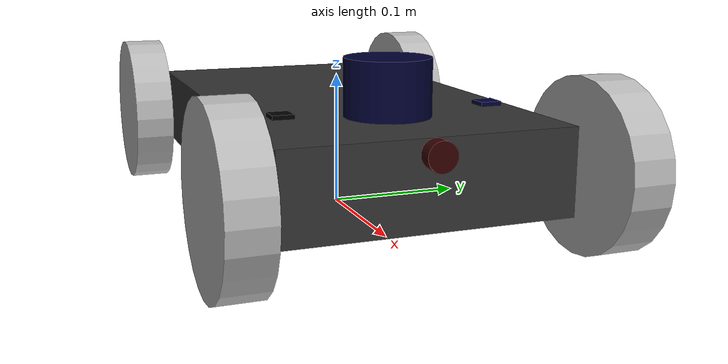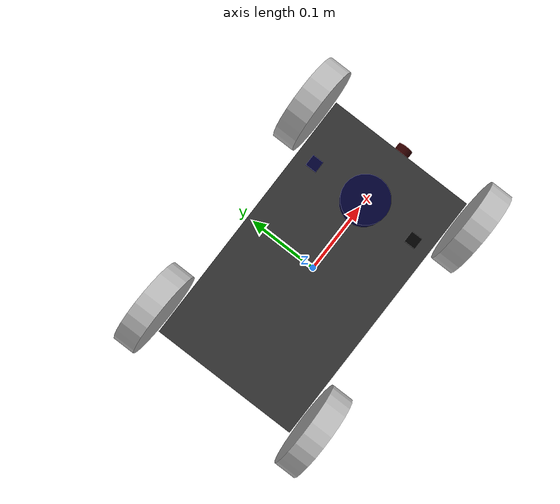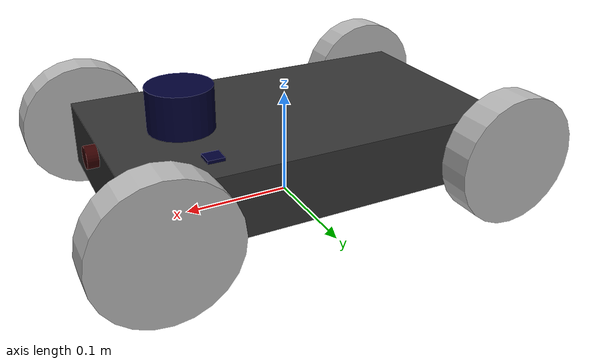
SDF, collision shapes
<?xml version="1.0" ?>
<sdf version="1.8">
    <model name='robot' canonical_link='base_link'>
        <plugin
            filename="gz-sim-diff-drive-system"
            name="gz::sim::systems::DiffDrive">
            <left_joint>left_wheel_joint</left_joint>
            <left_joint>left_front_wheel_joint</left_joint>
            <right_joint>right_wheel_joint</right_joint>
            <right_joint>right_front_wheel_joint</right_joint>
            <wheel_separation>0.3</wheel_separation>
            <wheel_radius>0.06</wheel_radius>
            <odom_publish_frequency>30</odom_publish_frequency>
            <odom_topic>odom</odom_topic>
            <topic>cmd_vel</topic>
            <frame_id>odom</frame_id>
            <child_frame_id>base_link</child_frame_id>
        </plugin>

        <link name='base_link'>
            <pose relative_to='__model__'>0 0 0 0 0 0</pose>
        </link>
        <link name='base_footprint'>
            <pose relative_to="base_link">0 0 0 0 0 0</pose>
        </link>
        <joint name='base_footprint_joint' type='fixed'>
            <parent>base_link</parent>
            <child>base_footprint</child>
        </joint>

        <!--chassis-->
        <link name='chassis'>
            <pose relative_to='base_link'>0 0 0.055 0 0 0</pose>
            <inertial> <!--inertial properties of the link mass, inertia matix-->
                <mass>2.5</mass>
                <inertia>
                    <ixx>0.014167</ixx>
                    <ixy>0</ixy>
                    <ixz>0</ixz>
                    <iyy>0.008333</iyy>
                    <iyz>0</iyz>
                    <izz>0.020833</izz>
                </inertia>
            </inertial>
            <visual name='visual'>
                <geometry>
                    <box>
                        <size>0.35 0.2 0.06</size>
                    </box>
                </geometry>
                <!--Color of the link-->
                <material>
                    <ambient>0.1 0.1 0.1 0.1</ambient>
                    <diffuse>0.2 0.2 0.2 1</diffuse>
                    <specular>0.5 0.5 0.5 1</specular>
                    <emissive>0.3 0.3 0.3 1</emissive>
                </material>
            </visual>
            <collision name='collision'>
                <geometry>
                    <box>
                        <size>0.35 0.2 0.06</size>
                    </box>
                </geometry>
            </collision>
        </link>
        <joint name='chassis_joint' type='fixed'>
            <parent>base_link</parent>
            <child>chassis</child>
        </joint>

        <link name='camera_body'>
            <pose relative_to="chassis">0.18 0 0.02 0 0 0</pose>
            <visual name='visual'>
                <pose>0 0 0 0 0 0</pose>
                <geometry>
                    <cylinder>
                        <radius>0.01</radius>
                        <length>0.01</length>
                    </cylinder>
                </geometry>
                <material>
                    <ambient>0.1 0 0 0.1</ambient>
                    <diffuse>0.2 0 0 1</diffuse>
                    <specular>0.5 0 0 1</specular>
                    <emissive>0.3 0 0 1</emissive>
                </material>
            </visual>
            <collision name='collision'>
                <pose>0 0 0 0 1.5707 0</pose>
                <geometry>
                    <cylinder>
                        <radius>0.01</radius>
                        <length>0.01</length>
                    </cylinder>
                </geometry>
            </collision>
            <sensor name="camera" type="camera">
              <camera>
                <pose>0 0 0 0 0 0</pose>
                <horizontal_fov>1.047</horizontal_fov>
                <image>
                  <width>640</width>
                  <height>480</height>
                </image>
                <clip>
                  <near>0.1</near>
                  <far>100</far>
                </clip>
                <optical_frame_id>camera</optical_frame_id>
              </camera>
              <always_on>1</always_on>
              <update_rate>30</update_rate>
              <visualize>true</visualize>
              <topic>camera</topic>
            </sensor>
        </link>
        <link name='camera'>
            <pose relative_to="camera_body">0 0 0 1.5708 3.141 1.5708</pose>
        </link>
        <joint name='camera_joint' type='fixed'>
            <parent>chassis</parent>
            <child>camera_body</child>
        </joint>
        <joint name='camera_optical_joint' type='fixed'>
            <parent>camera_body</parent>
            <child>camera</child>
        </joint>

        <link name='imu'>
            <pose relative_to="chassis">0.1 0.075 0.035 0 0 0</pose>
            <visual name='visual'>
                <geometry>
                    <box>
                        <size>0.015 0.015 0.003</size>
                    </box>
                </geometry>
                <material>
                    <ambient>0 0 0.1 0.1</ambient>
                    <diffuse>0 0 0.2 1</diffuse>
                    <specular>0 0 0.5 1</specular>
                    <emissive>0 0 0.3 1</emissive>
                </material>
            </visual>
            <collision name='collision'>
                <geometry>
                    <box>
                        <size>0.015 0.015 0.003</size>
                    </box>
                </geometry>
            </collision>
            <sensor name="imu_sensor" type="imu">
                <always_on>1</always_on>
                <update_rate>30</update_rate>
                <visualize>true</visualize>
                <topic>imu</topic>
                <gz_frame_id>imu</gz_frame_id>
            </sensor>
            <sensor name="magnetometer" type="magnetometer">
		  <always_on>1</always_on>
		  <update_rate>100</update_rate>
		  <visualize>true</visualize>
		  <topic>magnetometer</topic>
                  <gz_frame_id>mag</gz_frame_id>
		  <enable_metrics>true</enable_metrics>
		  <magnetometer>
		    <x>
		      <noise type="gaussian">
		        <mean>0.0</mean>
		        <stddev>0.1</stddev>
		      </noise>
		    </x>
		    <y>
		      <noise type="gaussian">
		        <mean>0.0</mean>
		        <stddev>0.1</stddev>
		      </noise>
		    </y>
		    <z>
		      <noise type="gaussian">
		        <mean>0.0</mean>
		        <stddev>0.1</stddev>
		      </noise>
		    </z>
		  </magnetometer>
		</sensor>
        </link>
        <joint name='imu_joint' type='fixed'>
            <parent>chassis</parent>
            <child>imu</child>
        </joint>

        <link name='gps'>
            <pose relative_to="chassis">0.1 -0.075 0.035 0 0 0</pose>
            <visual name='visual'>
                <geometry>
                    <box>
                        <size>0.015 0.015 0.003</size>
                    </box>
                </geometry>
                <material>
                    <ambient>0 0 0 0.1</ambient>
                    <diffuse>0 0 0 1</diffuse>
                    <specular>0 0 0 1</specular>
                    <emissive>0 0 0 1</emissive>
                </material>
            </visual>
            <collision name='collision'>
                <geometry>
                    <box>
                        <size>0.015 0.015 0.003</size>
                    </box>
                </geometry>
            </collision>
            <sensor name="navsat_sensor" type="navsat">
              <always_on>1</always_on>
              <update_rate>30</update_rate>
              <topic>navsat</topic>
              <gz_frame_id>gps</gz_frame_id>
            </sensor>
        </link>
        <joint name='gps_joint' type='fixed'>
            <parent>chassis</parent>
            <child>gps</child>
        </joint>

        <link name='left_front_wheel'>
            <pose relative_to="chassis">0.16 0.125 0 -1.5707 0 0</pose>
            <inertial>
                <mass>0.25</mass>
                <inertia>
                    <ixx>0.00083333</ixx>
                    <ixy>0</ixy>
                    <ixz>0</ixz>
                    <iyy>0.00083333</iyy>
                    <iyz>0</iyz>
                    <izz>0.00125</izz>
                </inertia>
            </inertial>
            <visual name='visual'>
                <pose>0 0 0 -1.5707 0 0</pose>
                <geometry>
                    <mesh>
                        <uri>meshes/wheel.dae</uri>
                        <scale>0.35 0.35 0.35</scale>
                    </mesh>
                </geometry>
            </visual>
            <collision name='collision'>
                <geometry>
                    <cylinder>
                        <radius>0.06</radius>
                        <length>0.03</length>
                    </cylinder>
                </geometry>
            </collision>
        </link>
        <joint name='left_front_wheel_joint' type='revolute'>
            <pose relative_to='left_front_wheel'/>
            <parent>chassis</parent>
            <child>left_front_wheel</child>
            <axis>
                <xyz expressed_in='__model__'>0 1 0</xyz>
            <limit>
            	<lower>-1.79769e+308</lower>    <!--negative infinity-->
            	<upper>1.79769e+308</upper>     <!--positive infinity-->
            </limit>
            </axis>

        </joint>

        <!--Left wheel-->
        <link name='left_wheel'>
            <pose relative_to="chassis">-0.16 0.125 0 -1.5707 0 0</pose>
            <inertial>
                <mass>0.25</mass>
                <inertia>
                    <ixx>0.00083333</ixx>
                    <ixy>0</ixy>
                    <ixz>0</ixz>
                    <iyy>0.00083333</iyy>
                    <iyz>0</iyz>
                    <izz>0.00125</izz>
                </inertia>
            </inertial>
            <visual name='visual'>
                <pose>0 0 0 -1.5707 0 0</pose>
                <geometry>
                    <mesh>
                        <uri>meshes/wheel.dae</uri>
                        <scale>0.35 0.35 0.35</scale>
                    </mesh>
                </geometry>
            </visual>
            <collision name='collision'>
                <geometry>
                    <cylinder>
                        <radius>0.06</radius>
                        <length>0.03</length>
                    </cylinder>
                </geometry>
            </collision>
        </link>
        <joint name='left_wheel_joint' type='revolute'>
            <pose relative_to='left_wheel'/>
            <parent>chassis</parent>
            <child>left_wheel</child>
            <axis>
                <xyz expressed_in='__model__'>0 1 0</xyz>
            <limit>
            	<lower>-1.79769e+308</lower>    <!--negative infinity-->
            	<upper>1.79769e+308</upper>     <!--positive infinity-->
            </limit>
            </axis>
        </joint>

        <link name='right_front_wheel'>
            <pose relative_to="chassis">0.16 -0.125 0 -1.5707 0 0</pose>
            <inertial>
                <mass>0.25</mass>
                <inertia>
                    <ixx>0.00083333</ixx>
                    <ixy>0</ixy>
                    <ixz>0</ixz>
                    <iyy>0.00083333</iyy>
                    <iyz>0</iyz>
                    <izz>0.00125</izz>
                </inertia>
            </inertial>
            <visual name='visual'>
                <pose>0 0 0 -1.5707 0 0</pose>
                <geometry>
                    <mesh>
                        <uri>meshes/wheel.dae</uri>
                        <scale>0.35 0.35 0.35</scale>
                    </mesh>
                </geometry>
            </visual>
            <collision name='collision'>
                <geometry>
                    <cylinder>
                        <radius>0.06</radius>
                        <length>0.03</length>
                    </cylinder>
                </geometry>
            </collision>
        </link>
        <joint name='right_front_wheel_joint' type='revolute'>
            <pose relative_to='right_front_wheel'/>
            <parent>chassis</parent>
            <child>right_front_wheel</child>
            <axis>
                <xyz expressed_in='__model__'>0 1 0</xyz>
             <limit>
            	<lower>-1.79769e+308</lower>    <!--negative infinity-->
            	<upper>1.79769e+308</upper>     <!--positive infinity-->
            </limit>
            </axis>
       </joint>

        <link name='right_wheel'>
            <pose relative_to="chassis">-0.16 -0.125 0 -1.5707 0 0</pose>
            <inertial>
                <mass>0.25</mass>
                <inertia>
                    <ixx>0.00083333</ixx>
                    <ixy>0</ixy>
                    <ixz>0</ixz>
                    <iyy>0.00083333</iyy>
                    <iyz>0</iyz>
                    <izz>0.00125</izz>
                </inertia>
            </inertial>
            <visual name='visual'>
                <pose>0 0 0 -1.5707 0 0</pose>
                <geometry>
                    <mesh>
                        <uri>meshes/wheel.dae</uri>
                        <scale>0.35 0.35 0.35</scale>
                    </mesh>
                </geometry>
            </visual>
            <collision name='collision'>
                <geometry>
                    <cylinder>
                        <radius>0.06</radius>
                        <length>0.03</length>
                    </cylinder>
                </geometry>
            </collision>
        </link>
        <joint name='right_wheel_joint' type='revolute'>
            <pose relative_to='right_wheel'/>
            <parent>chassis</parent>
            <child>right_wheel</child>
            <axis>
                <xyz expressed_in='__model__'>0 1 0</xyz>
		    <limit>
		    	<lower>-1.79769e+308</lower>    <!--negative infinity-->
		    	<upper>1.79769e+308</upper>     <!--positive infinity-->
		    </limit>
            </axis>
        </joint>
        <link name='lidar'>
            <pose relative_to='chassis'>0.1 0 0.05 0 0 0</pose>
            <visual name='visual'>
                <geometry>
                    <cylinder>
                        <radius>0.03</radius>
                        <length>0.04</length>
                    </cylinder>

                </geometry>
                <material>
                    <ambient>0 0 0.1 0.1</ambient>
                    <diffuse>0 0 0.2 1</diffuse>
                    <specular>0 0 0.5 1</specular>
                    <emissive>0 0 0.3 1</emissive>
                </material>
            </visual>
            <collision name='collision'>
                <geometry>
                    <cylinder>
                        <radius>0.03</radius>
                        <length>0.04</length>
                    </cylinder>
                </geometry>
            </collision>
            <sensor name='gpu_lidar' type='gpu_lidar'>"
                <pose relative_to='lidar'>0 0 0.05 0 0 0</pose>
                <topic>scan</topic>
                <gz_frame_id>lidar</gz_frame_id>
                <update_rate>10</update_rate>
                <ray>
                    <scan>
                        <horizontal>
                            <samples>1080</samples>
                            <resolution>1</resolution>
                            <min_angle>-2.35619</min_angle>
                            <max_angle>2.35619</max_angle>
                        </horizontal>
                        <vertical>
                            <samples>1</samples>
                            <resolution>0.01</resolution>
                            <min_angle>0</min_angle>
                            <max_angle>0</max_angle>
                        </vertical>
                    </scan>
                    <range>
                        <min>0.08</min>
                        <max>10.0</max>
                        <resolution>0.01</resolution>
                    </range>
                </ray>
                <visualize>true</visualize>
            </sensor>
        </link>
        <joint name='lidar_joint' type='fixed'>
            <parent>chassis</parent>
            <child>lidar</child>
        </joint>
    </model>
</sdf>
